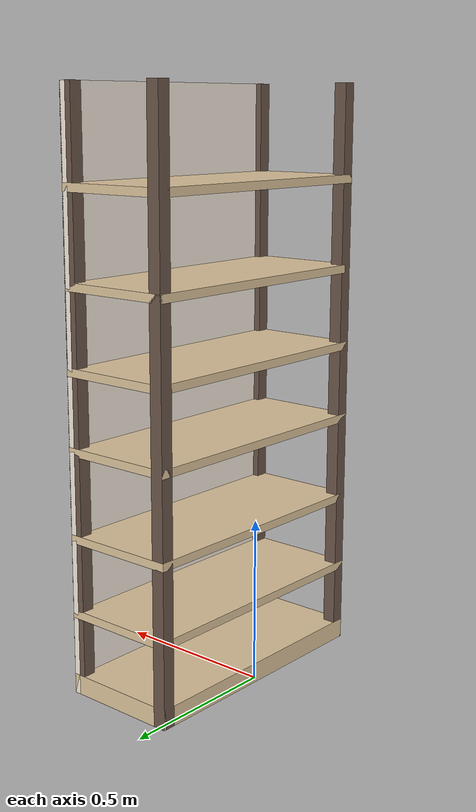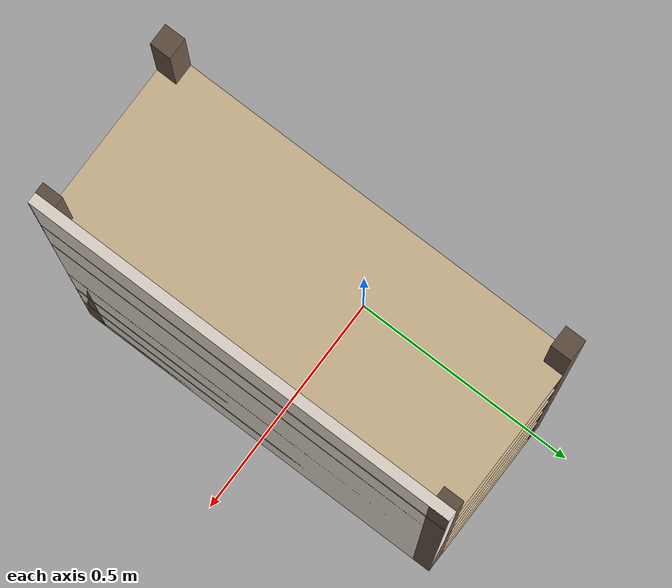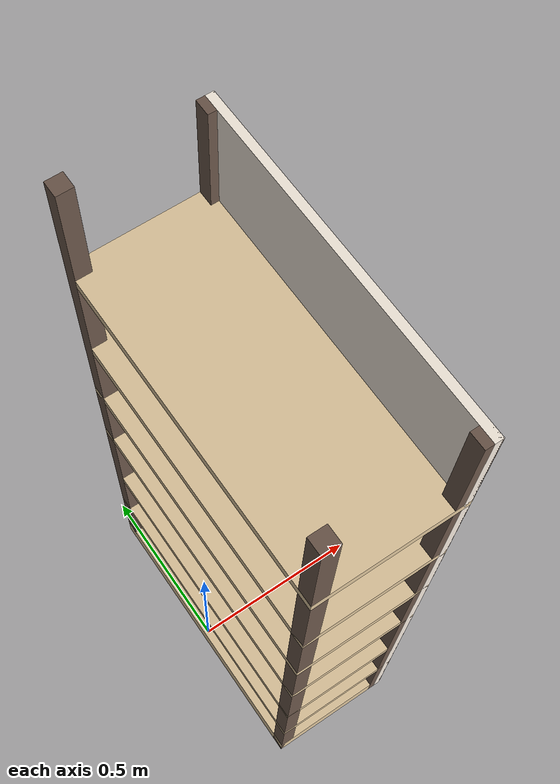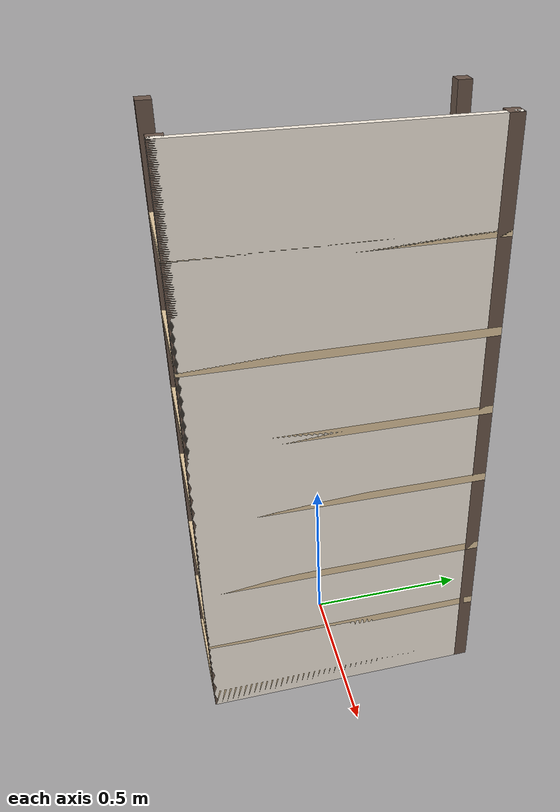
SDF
<?xml version="1.0"?>
<sdf version="1.9">
  <model name="pharmacy_shelf_compact">
    <static>true</static>
    <link name="body">
      <collision name="left_post_collision">
        <pose>0.0 -0.40 0.88 0 0 0</pose>
        <geometry><box><size>0.04 0.04 1.76</size></box></geometry>
      </collision>
      <collision name="right_post_collision">
        <pose>0.0 0.40 0.88 0 0 0</pose>
        <geometry><box><size>0.04 0.04 1.76</size></box></geometry>
      </collision>
      <collision name="rear_left_post_collision">
        <pose>0.32 -0.40 0.88 0 0 0</pose>
        <geometry><box><size>0.04 0.04 1.76</size></box></geometry>
      </collision>
      <collision name="rear_right_post_collision">
        <pose>0.32 0.40 0.88 0 0 0</pose>
        <geometry><box><size>0.04 0.04 1.76</size></box></geometry>
      </collision>
      <collision name="back_panel_collision">
        <pose>0.33 0.0 0.88 0 0 0</pose>
        <geometry><box><size>0.02 0.84 1.76</size></box></geometry>
      </collision>
      <collision name="bottom_board_collision">
        <pose>0.16 0.0 0.03 0 0 0</pose>
        <geometry><box><size>0.36 0.84 0.06</size></box></geometry>
      </collision>
      <collision name="level_1_collision">
        <pose>0.16 0.0 0.25 0 0 0</pose>
        <geometry><box><size>0.36 0.84 0.025</size></box></geometry>
      </collision>
      <collision name="level_2_collision">
        <pose>0.16 0.0 0.48 0 0 0</pose>
        <geometry><box><size>0.36 0.84 0.025</size></box></geometry>
      </collision>
      <collision name="level_3_collision">
        <pose>0.16 0.0 0.74 0 0 0</pose>
        <geometry><box><size>0.36 0.84 0.025</size></box></geometry>
      </collision>
      <collision name="level_4_collision">
        <pose>0.16 0.0 0.97 0 0 0</pose>
        <geometry><box><size>0.36 0.84 0.025</size></box></geometry>
      </collision>
      <collision name="level_5_collision">
        <pose>0.16 0.0 1.21 0 0 0</pose>
        <geometry><box><size>0.36 0.84 0.025</size></box></geometry>
      </collision>
      <collision name="level_6_collision">
        <pose>0.16 0.0 1.48 0 0 0</pose>
        <geometry><box><size>0.36 0.84 0.025</size></box></geometry>
      </collision>

      <visual name="left_post_visual">
        <pose>0.0 -0.40 0.88 0 0 0</pose>
        <geometry><box><size>0.04 0.04 1.76</size></box></geometry>
        <material><ambient>0.30 0.24 0.20 1</ambient><diffuse>0.42 0.34 0.29 1</diffuse></material>
      </visual>
      <visual name="right_post_visual">
        <pose>0.0 0.40 0.88 0 0 0</pose>
        <geometry><box><size>0.04 0.04 1.76</size></box></geometry>
        <material><ambient>0.30 0.24 0.20 1</ambient><diffuse>0.42 0.34 0.29 1</diffuse></material>
      </visual>
      <visual name="rear_left_post_visual">
        <pose>0.32 -0.40 0.88 0 0 0</pose>
        <geometry><box><size>0.04 0.04 1.76</size></box></geometry>
        <material><ambient>0.30 0.24 0.20 1</ambient><diffuse>0.42 0.34 0.29 1</diffuse></material>
      </visual>
      <visual name="rear_right_post_visual">
        <pose>0.32 0.40 0.88 0 0 0</pose>
        <geometry><box><size>0.04 0.04 1.76</size></box></geometry>
        <material><ambient>0.30 0.24 0.20 1</ambient><diffuse>0.42 0.34 0.29 1</diffuse></material>
      </visual>
      <visual name="back_panel_visual">
        <pose>0.33 0.0 0.88 0 0 0</pose>
        <geometry><box><size>0.02 0.84 1.76</size></box></geometry>
        <material><ambient>0.90 0.86 0.80 1</ambient><diffuse>0.97 0.93 0.88 1</diffuse></material>
      </visual>
      <visual name="bottom_board_visual">
        <pose>0.16 0.0 0.03 0 0 0</pose>
        <geometry><box><size>0.36 0.84 0.06</size></box></geometry>
        <material><ambient>0.78 0.69 0.55 1</ambient><diffuse>0.88 0.78 0.62 1</diffuse></material>
      </visual>
      <visual name="level_1_visual">
        <pose>0.16 0.0 0.25 0 0 0</pose>
        <geometry><box><size>0.36 0.84 0.025</size></box></geometry>
        <material><ambient>0.78 0.69 0.55 1</ambient><diffuse>0.88 0.78 0.62 1</diffuse></material>
      </visual>
      <visual name="level_2_visual">
        <pose>0.16 0.0 0.48 0 0 0</pose>
        <geometry><box><size>0.36 0.84 0.025</size></box></geometry>
        <material><ambient>0.78 0.69 0.55 1</ambient><diffuse>0.88 0.78 0.62 1</diffuse></material>
      </visual>
      <visual name="level_3_visual">
        <pose>0.16 0.0 0.74 0 0 0</pose>
        <geometry><box><size>0.36 0.84 0.025</size></box></geometry>
        <material><ambient>0.78 0.69 0.55 1</ambient><diffuse>0.88 0.78 0.62 1</diffuse></material>
      </visual>
      <visual name="level_4_visual">
        <pose>0.16 0.0 0.97 0 0 0</pose>
        <geometry><box><size>0.36 0.84 0.025</size></box></geometry>
        <material><ambient>0.78 0.69 0.55 1</ambient><diffuse>0.88 0.78 0.62 1</diffuse></material>
      </visual>
      <visual name="level_5_visual">
        <pose>0.16 0.0 1.21 0 0 0</pose>
        <geometry><box><size>0.36 0.84 0.025</size></box></geometry>
        <material><ambient>0.78 0.69 0.55 1</ambient><diffuse>0.88 0.78 0.62 1</diffuse></material>
      </visual>
      <visual name="level_6_visual">
        <pose>0.16 0.0 1.48 0 0 0</pose>
        <geometry><box><size>0.36 0.84 0.025</size></box></geometry>
        <material><ambient>0.78 0.69 0.55 1</ambient><diffuse>0.88 0.78 0.62 1</diffuse></material>
      </visual>
    </link>
  </model>
</sdf>
